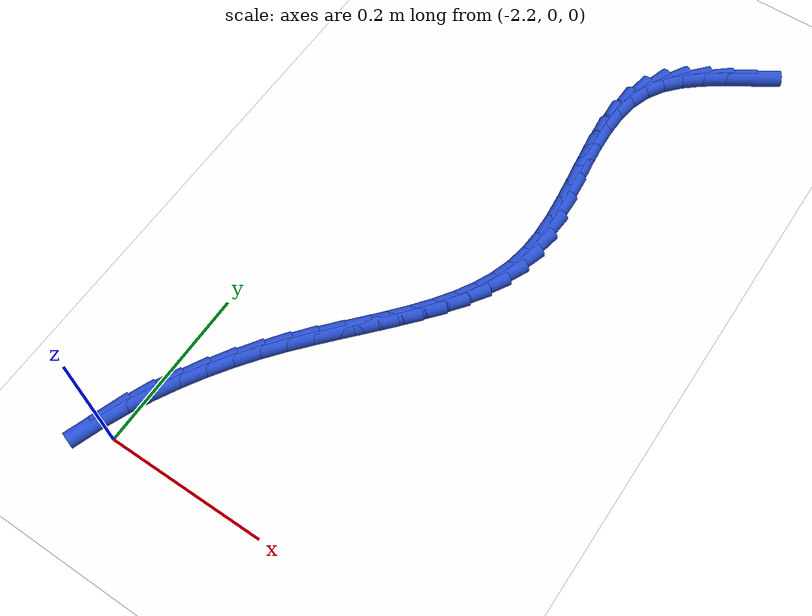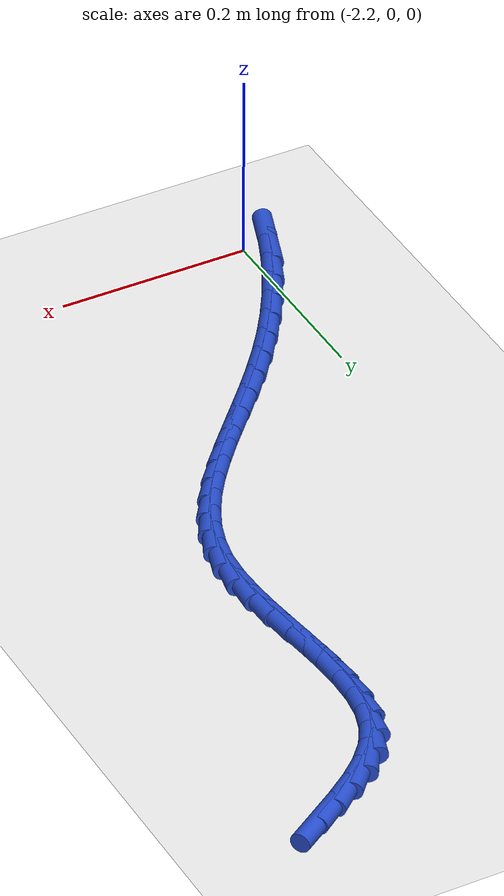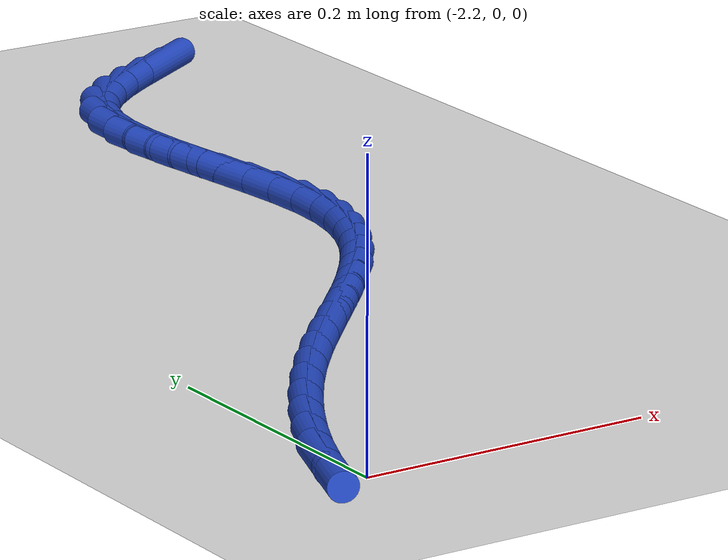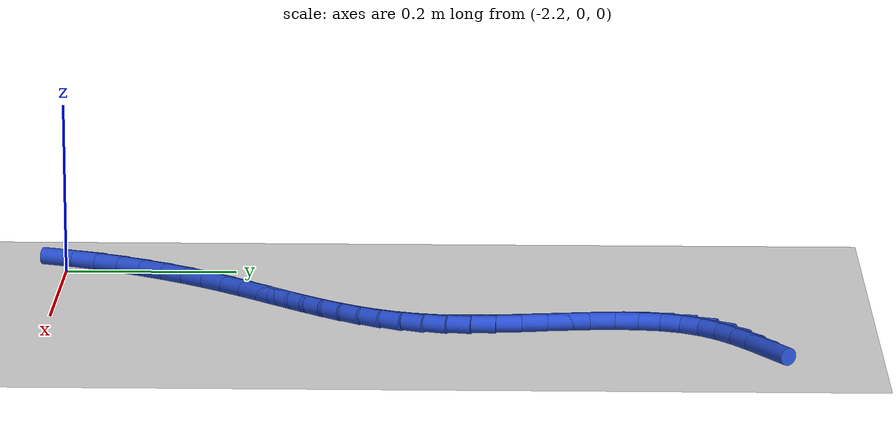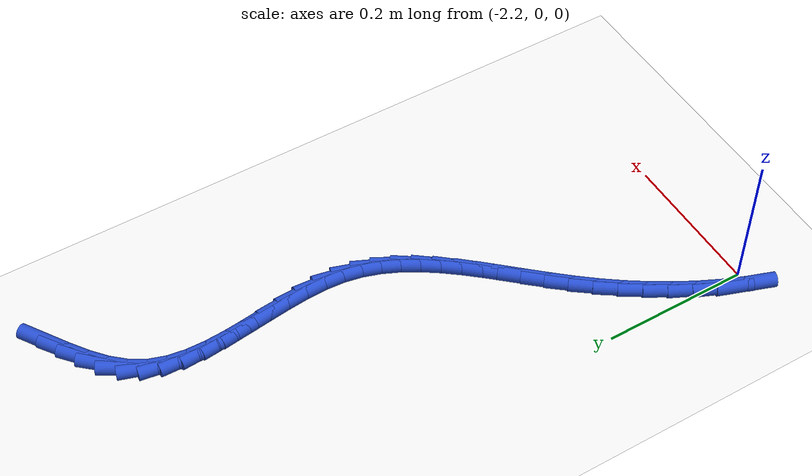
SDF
<sdf version="1.6">
 <world name="default">
  <model name="ground_plane">
   <static>1</static>
   <link name="link">
    <collision name="collision">
     <geometry><plane><normal>0 0 1</normal><size>100 100</size></plane></geometry>
     <surface><friction><ode><mu>100</mu><mu2>50</mu2></ode></friction></surface>
    </collision>
    <visual name="visual">
     <cast_shadows>0</cast_shadows>
     <geometry><plane><normal>0 0 1</normal><size>100 100</size></plane></geometry>
     <material>
      <script><uri>file://media/materials/scripts/gazebo.material</uri><name>Gazebo/WhiteGlow</name></script>
     </material>
    </visual>
   </link>
  </model>
  <model name="line">
   <link name="link_100">
    <pose>-1.8469692158250728 0.8065508634298325 0.01 0 1.57 0.5693327987315252</pose>
    <collision name="collision">
     <geometry><cylinder><radius>0.01</radius><length>0.08</length></cylinder></geometry>
    </collision>
    <visual name="visual">
     <material>
      <script><name>Gazebo/Blue</name><uri>file://media/materials/scripts/gazebo.material</uri></script>
     </material>
     <geometry><cylinder><radius>0.01</radius><length>0.08</length></cylinder></geometry>
    </visual>
   </link>
   <link name="link_101">
    <pose>-1.8717524541926187 0.7906889058841522 0.01 0 1.57 0.6126636082556762</pose>
    <collision name="collision">
     <geometry><cylinder><radius>0.01</radius><length>0.08</length></cylinder></geometry>
    </collision>
    <visual name="visual">
     <material>
      <script><name>Gazebo/Blue</name><uri>file://media/materials/scripts/gazebo.material</uri></script>
     </material>
     <geometry><cylinder><radius>0.01</radius><length>0.08</length></cylinder></geometry>
    </visual>
   </link>
   <link name="link_102">
    <pose>-1.8951128236350907 0.7742691121144532 0.01 0 1.57 0.6984638401759388</pose>
    <collision name="collision">
     <geometry><cylinder><radius>0.01</radius><length>0.08</length></cylinder></geometry>
    </collision>
    <visual name="visual">
     <material>
      <script><name>Gazebo/Blue</name><uri>file://media/materials/scripts/gazebo.material</uri></script>
     </material>
     <geometry><cylinder><radius>0.01</radius><length>0.08</length></cylinder></geometry>
    </visual>
   </link>
   <link name="link_103">
    <pose>-1.9159754541836704 0.756751475083253 0.01 0 1.57 0.8365385955934447</pose>
    <collision name="collision">
     <geometry><cylinder><radius>0.01</radius><length>0.08</length></cylinder></geometry>
    </collision>
    <visual name="visual">
     <material>
      <script><name>Gazebo/Blue</name><uri>file://media/materials/scripts/gazebo.material</uri></script>
     </material>
     <geometry><cylinder><radius>0.01</radius><length>0.08</length></cylinder></geometry>
    </visual>
   </link>
   <link name="link_104">
    <pose>-1.9332654758695402 0.7375959877530713 0.01 0 1.57 1.0344301950333983</pose>
    <collision name="collision">
     <geometry><cylinder><radius>0.01</radius><length>0.08</length></cylinder></geometry>
    </collision>
    <visual name="visual">
     <material>
      <script><name>Gazebo/Blue</name><uri>file://media/materials/scripts/gazebo.material</uri></script>
     </material>
     <geometry><cylinder><radius>0.01</radius><length>0.08</length></cylinder></geometry>
    </visual>
   </link>
   <link name="link_105">
    <pose>-1.9459391984768044 0.7162777264544191 0.01 0 1.57 1.248348367734767</pose>
    <collision name="collision">
     <geometry><cylinder><radius>0.01</radius><length>0.08</length></cylinder></geometry>
    </collision>
    <visual name="visual">
     <material>
      <script><name>Gazebo/Blue</name><uri>file://media/materials/scripts/gazebo.material</uri></script>
     </material>
     <geometry><cylinder><radius>0.01</radius><length>0.08</length></cylinder></geometry>
    </visual>
   </link>
   <link name="link_106">
    <pose>-1.9538196985548604 0.6926910704583111 0.01 0 1.57 1.4201837935953527</pose>
    <collision name="collision">
     <geometry><cylinder><radius>0.01</radius><length>0.08</length></cylinder></geometry>
    </collision>
    <visual name="visual">
     <material>
      <script><name>Gazebo/Blue</name><uri>file://media/materials/scripts/gazebo.material</uri></script>
     </material>
     <geometry><cylinder><radius>0.01</radius><length>0.08</length></cylinder></geometry>
    </visual>
   </link>
   <link name="link_107">
    <pose>-1.9576891258969542 0.6671943557163901 0.01 0 1.57 1.5452618151788942</pose>
    <collision name="collision">
     <geometry><cylinder><radius>0.01</radius><length>0.08</length></cylinder></geometry>
    </collision>
    <visual name="visual">
     <material>
      <script><name>Gazebo/Blue</name><uri>file://media/materials/scripts/gazebo.material</uri></script>
     </material>
     <geometry><cylinder><radius>0.01</radius><length>0.08</length></cylinder></geometry>
    </visual>
   </link>
   <link name="link_108">
    <pose>-1.9583793306319626 0.640169960976709 0.01 0 1.57 -1.5120360182173296</pose>
    <collision name="collision">
     <geometry><cylinder><radius>0.01</radius><length>0.08</length></cylinder></geometry>
    </collision>
    <visual name="visual">
     <material>
      <script><name>Gazebo/Blue</name><uri>file://media/materials/scripts/gazebo.material</uri></script>
     </material>
     <geometry><cylinder><radius>0.01</radius><length>0.08</length></cylinder></geometry>
    </visual>
   </link>
   <link name="link_109">
    <pose>-1.956722162888762 0.6120002649873216 0.01 0 1.57 -1.4615748258199432</pose>
    <collision name="collision">
     <geometry><cylinder><radius>0.01</radius><length>0.08</length></cylinder></geometry>
    </collision>
    <visual name="visual">
     <material>
      <script><name>Gazebo/Blue</name><uri>file://media/materials/scripts/gazebo.material</uri></script>
     </material>
     <geometry><cylinder><radius>0.01</radius><length>0.08</length></cylinder></geometry>
    </visual>
   </link>
   <link name="link_110">
    <pose>-1.9535494727962284 0.5830676464962813 0.01 0 1.57 -1.4399901482570003</pose>
    <collision name="collision">
     <geometry><cylinder><radius>0.01</radius><length>0.08</length></cylinder></geometry>
    </collision>
    <visual name="visual">
     <material>
      <script><name>Gazebo/Blue</name><uri>file://media/materials/scripts/gazebo.material</uri></script>
     </material>
     <geometry><cylinder><radius>0.01</radius><length>0.08</length></cylinder></geometry>
    </visual>
   </link>
   <link name="link_111">
    <pose>-1.9496931104832382 0.5537544842516414 0.01 0 1.57 -1.4449545585034875</pose>
    <collision name="collision">
     <geometry><cylinder><radius>0.01</radius><length>0.08</length></cylinder></geometry>
    </collision>
    <visual name="visual">
     <material>
      <script><name>Gazebo/Blue</name><uri>file://media/materials/scripts/gazebo.material</uri></script>
     </material>
     <geometry><cylinder><radius>0.01</radius><length>0.08</length></cylinder></geometry>
    </visual>
   </link>
   <link name="link_112">
    <pose>-1.9459849260786686 0.5244431570014556 0.01 0 1.57 -1.4767630729621883</pose>
    <collision name="collision">
     <geometry><cylinder><radius>0.01</radius><length>0.08</length></cylinder></geometry>
    </collision>
    <visual name="visual">
     <material>
      <script><name>Gazebo/Blue</name><uri>file://media/materials/scripts/gazebo.material</uri></script>
     </material>
     <geometry><cylinder><radius>0.01</radius><length>0.08</length></cylinder></geometry>
    </visual>
   </link>
   <link name="link_113">
    <pose>-1.9432567697113954 0.49551604349377765 0.01 0 1.57 -1.5382701156890366</pose>
    <collision name="collision">
     <geometry><cylinder><radius>0.01</radius><length>0.08</length></cylinder></geometry>
    </collision>
    <visual name="visual">
     <material>
      <script><name>Gazebo/Blue</name><uri>file://media/materials/scripts/gazebo.material</uri></script>
     </material>
     <geometry><cylinder><radius>0.01</radius><length>0.08</length></cylinder></geometry>
    </visual>
   </link>
   <link name="link_114">
    <pose>-1.9423404915102949 0.46735552247666 0.01 0 1.57 1.506931182942452</pose>
    <collision name="collision">
     <geometry><cylinder><radius>0.01</radius><length>0.08</length></cylinder></geometry>
    </collision>
    <visual name="visual">
     <material>
      <script><name>Gazebo/Blue</name><uri>file://media/materials/scripts/gazebo.material</uri></script>
     </material>
     <geometry><cylinder><radius>0.01</radius><length>0.08</length></cylinder></geometry>
    </visual>
   </link>
   <link name="link_115">
    <pose>-1.9440679374086831 0.44034397055648034 0.01 0 1.57 1.3782835347966171</pose>
    <collision name="collision">
     <geometry><cylinder><radius>0.01</radius><length>0.08</length></cylinder></geometry>
    </collision>
    <visual name="visual">
     <material>
      <script><name>Gazebo/Blue</name><uri>file://media/materials/scripts/gazebo.material</uri></script>
     </material>
     <geometry><cylinder><radius>0.01</radius><length>0.08</length></cylinder></geometry>
    </visual>
   </link>
   <link name="link_116">
    <pose>-1.9490560926210962 0.41475408600384095 0.01 0 1.57 1.2499702489791575</pose>
    <collision name="collision">
     <geometry><cylinder><radius>0.01</radius><length>0.08</length></cylinder></geometry>
    </collision>
    <visual name="visual">
     <material>
      <script><name>Gazebo/Blue</name><uri>file://media/materials/scripts/gazebo.material</uri></script>
     </material>
     <geometry><cylinder><radius>0.01</radius><length>0.08</length></cylinder></geometry>
    </visual>
   </link>
   <link name="link_117">
    <pose>-1.9571309104806736 0.3904547749918891 0.01 0 1.57 1.1354602323575012</pose>
    <collision name="collision">
     <geometry><cylinder><radius>0.01</radius><length>0.08</length></cylinder></geometry>
    </collision>
    <visual name="visual">
     <material>
      <script><name>Gazebo/Blue</name><uri>file://media/materials/scripts/gazebo.material</uri></script>
     </material>
     <geometry><cylinder><radius>0.01</radius><length>0.08</length></cylinder></geometry>
    </visual>
   </link>
   <link name="link_118">
    <pose>-1.967936347660481 0.36722204122697044 0.01 0 1.57 1.0387625685012478</pose>
    <collision name="collision">
     <geometry><cylinder><radius>0.01</radius><length>0.08</length></cylinder></geometry>
    </collision>
    <visual name="visual">
     <material>
      <script><name>Gazebo/Blue</name><uri>file://media/materials/scripts/gazebo.material</uri></script>
     </material>
     <geometry><cylinder><radius>0.01</radius><length>0.08</length></cylinder></geometry>
    </visual>
   </link>
   <link name="link_119">
    <pose>-1.9811163608335847 0.344831888415431 0.01 0 1.57 0.9613524092617884</pose>
    <collision name="collision">
     <geometry><cylinder><radius>0.01</radius><length>0.08</length></cylinder></geometry>
    </collision>
    <visual name="visual">
     <material>
      <script><name>Gazebo/Blue</name><uri>file://media/materials/scripts/gazebo.material</uri></script>
     </material>
     <geometry><cylinder><radius>0.01</radius><length>0.08</length></cylinder></geometry>
    </visual>
   </link>
   <link name="link_120">
    <pose>-1.9963149066730503 0.32306032026361653 0.01 0 1.57 0.9029545458814607</pose>
    <collision name="collision">
     <geometry><cylinder><radius>0.01</radius><length>0.08</length></cylinder></geometry>
    </collision>
    <visual name="visual">
     <material>
      <script><name>Gazebo/Blue</name><uri>file://media/materials/scripts/gazebo.material</uri></script>
     </material>
     <geometry><cylinder><radius>0.01</radius><length>0.08</length></cylinder></geometry>
    </visual>
   </link>
   <link name="link_121">
    <pose>-2.0131759418519453 0.30168334047787293 0.01 0 1.57 0.8624262521462508</pose>
    <collision name="collision">
     <geometry><cylinder><radius>0.01</radius><length>0.08</length></cylinder></geometry>
    </collision>
    <visual name="visual">
     <material>
      <script><name>Gazebo/Blue</name><uri>file://media/materials/scripts/gazebo.material</uri></script>
     </material>
     <geometry><cylinder><radius>0.01</radius><length>0.08</length></cylinder></geometry>
    </visual>
   </link>
   <link name="link_122">
    <pose>-2.031343423043335 0.28047695276454615 0.01 0 1.57 0.8383953286288205</pose>
    <collision name="collision">
     <geometry><cylinder><radius>0.01</radius><length>0.08</length></cylinder></geometry>
    </collision>
    <visual name="visual">
     <material>
      <script><name>Gazebo/Blue</name><uri>file://media/materials/scripts/gazebo.material</uri></script>
     </material>
     <geometry><cylinder><radius>0.01</radius><length>0.08</length></cylinder></geometry>
    </visual>
   </link>
   <link name="link_123">
    <pose>-2.050461306920287 0.2592171608299823 0.01 0 1.57 0.8296111301917639</pose>
    <collision name="collision">
     <geometry><cylinder><radius>0.01</radius><length>0.08</length></cylinder></geometry>
    </collision>
    <visual name="visual">
     <material>
      <script><name>Gazebo/Blue</name><uri>file://media/materials/scripts/gazebo.material</uri></script>
     </material>
     <geometry><cylinder><radius>0.01</radius><length>0.08</length></cylinder></geometry>
    </visual>
   </link>
   <link name="link_124">
    <pose>-2.0701735501558662 0.23767996838052657 0.01 0 1.57 0.8350850820106905</pose>
    <collision name="collision">
     <geometry><cylinder><radius>0.01</radius><length>0.08</length></cylinder></geometry>
    </collision>
    <visual name="visual">
     <material>
      <script><name>Gazebo/Blue</name><uri>file://media/materials/scripts/gazebo.material</uri></script>
     </material>
     <geometry><cylinder><radius>0.01</radius><length>0.08</length></cylinder></geometry>
    </visual>
   </link>
   <link name="link_125">
    <pose>-2.09012410942314 0.21564137912252526 0.01 0 1.57 0.8541013558745589</pose>
    <collision name="collision">
     <geometry><cylinder><radius>0.01</radius><length>0.08</length></cylinder></geometry>
    </collision>
    <visual name="visual">
     <material>
      <script><name>Gazebo/Blue</name><uri>file://media/materials/scripts/gazebo.material</uri></script>
     </material>
     <geometry><cylinder><radius>0.01</radius><length>0.08</length></cylinder></geometry>
    </visual>
   </link>
   <link name="link_126">
    <pose>-2.1099569413951746 0.19287739676232418 0.01 0 1.57 0.8861485407205125</pose>
    <collision name="collision">
     <geometry><cylinder><radius>0.01</radius><length>0.08</length></cylinder></geometry>
    </collision>
    <visual name="visual">
     <material>
      <script><name>Gazebo/Blue</name><uri>file://media/materials/scripts/gazebo.material</uri></script>
     </material>
     <geometry><cylinder><radius>0.01</radius><length>0.08</length></cylinder></geometry>
    </visual>
   </link>
   <link name="link_127">
    <pose>-2.129316004044674 0.16916402735309155 0.01 0 1.57 0.9285538691560973</pose>
    <collision name="collision">
     <geometry><cylinder><radius>0.01</radius><length>0.08</length></cylinder></geometry>
    </collision>
    <visual name="visual">
     <material>
      <script><name>Gazebo/Blue</name><uri>file://media/materials/scripts/gazebo.material</uri></script>
     </material>
     <geometry><cylinder><radius>0.01</radius><length>0.08</length></cylinder></geometry>
    </visual>
   </link>
   <link name="link_128">
    <pose>-2.147882228121463 0.14434404054359912 0.01 0 1.57 0.9732227315222464</pose>
    <collision name="collision">
     <geometry><cylinder><radius>0.01</radius><length>0.08</length></cylinder></geometry>
    </collision>
    <visual name="visual">
     <material>
      <script><name>Gazebo/Blue</name><uri>file://media/materials/scripts/gazebo.material</uri></script>
     </material>
     <geometry><cylinder><radius>0.01</radius><length>0.08</length></cylinder></geometry>
    </visual>
   </link>
   <link name="link_129">
    <pose>-2.1654701657499036 0.11850149279169164 0.01 0 1.57 1.0189442171665566</pose>
    <collision name="collision">
     <geometry><cylinder><radius>0.01</radius><length>0.08</length></cylinder></geometry>
    </collision>
    <visual name="visual">
     <material>
      <script><name>Gazebo/Blue</name><uri>file://media/materials/scripts/gazebo.material</uri></script>
     </material>
     <geometry><cylinder><radius>0.01</radius><length>0.08</length></cylinder></geometry>
    </visual>
   </link>
   <link name="link_130">
    <pose>-2.181924545205012 0.09177493114197098 0.01 0 1.57 1.066391288916727</pose>
    <collision name="collision">
     <geometry><cylinder><radius>0.01</radius><length>0.08</length></cylinder></geometry>
    </collision>
    <visual name="visual">
     <material>
      <script><name>Gazebo/Blue</name><uri>file://media/materials/scripts/gazebo.material</uri></script>
     </material>
     <geometry><cylinder><radius>0.01</radius><length>0.08</length></cylinder></geometry>
    </visual>
   </link>
   <link name="link_131">
    <pose>-2.1970900947618075 0.06430290263903905 0.01 0 1.57 1.1162506188491033</pose>
    <collision name="collision">
     <geometry><cylinder><radius>0.01</radius><length>0.08</length></cylinder></geometry>
    </collision>
    <visual name="visual">
     <material>
      <script><name>Gazebo/Blue</name><uri>file://media/materials/scripts/gazebo.material</uri></script>
     </material>
     <geometry><cylinder><radius>0.01</radius><length>0.08</length></cylinder></geometry>
    </visual>
   </link>
   <link name="link_132">
    <pose>-2.210811542695306 0.036223954327497636 0.01 0 1.57 1.1692383535626314</pose>
    <collision name="collision">
     <geometry><cylinder><radius>0.01</radius><length>0.08</length></cylinder></geometry>
    </collision>
    <visual name="visual">
     <material>
      <script><name>Gazebo/Blue</name><uri>file://media/materials/scripts/gazebo.material</uri></script>
     </material>
     <geometry><cylinder><radius>0.01</radius><length>0.08</length></cylinder></geometry>
    </visual>
   </link>
   <link name="link_133">
    <pose>-2.222933617280527 0.007676633251948568 0.01 0 1.57 1.2261099222320515</pose>
    <collision name="collision">
     <geometry><cylinder><radius>0.01</radius><length>0.08</length></cylinder></geometry>
    </collision>
    <visual name="visual">
     <material>
      <script><name>Gazebo/Blue</name><uri>file://media/materials/scripts/gazebo.material</uri></script>
     </material>
     <geometry><cylinder><radius>0.01</radius><length>0.08</length></cylinder></geometry>
    </visual>
   </link>
  </model>
 </world>
</sdf>
